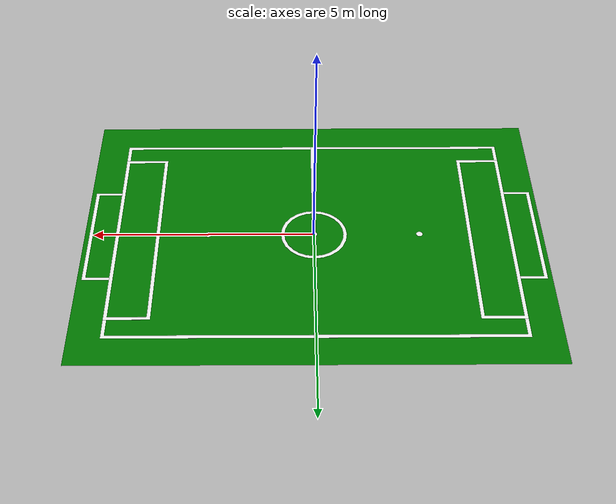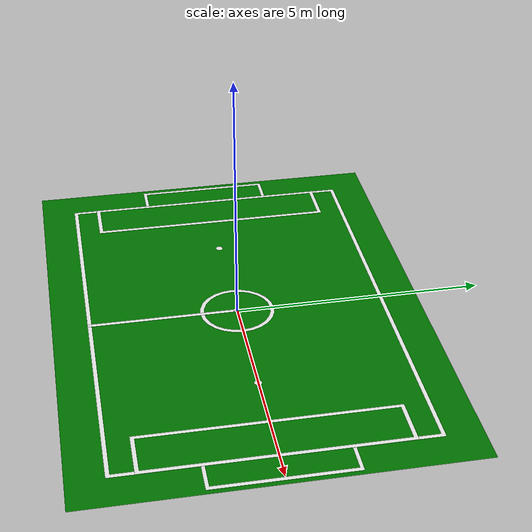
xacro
<?xml version="1.0"?>

<robot name="field" xmlns:xacro="http://www.ros.org/wiki/xacro">
  <xacro:property name="scale" value="1"/>

  <material name="green">
    <color rgba="0 0.5 0 1"/>
  </material>

  <material name="white">
    <color rgba="1 1 1 1"/>
  </material>

  <material name="red">
    <color rgba="1 0 0 1"/>
  </material>

  <material name="blue">
    <color rgba="0 0 1 1"/>
  </material>

  <link name="world"></link>

  <link name="base">
    <visual>
      <geometry>
        <box size="${scale * 10.4} ${scale * 7.4} 0"/>
      </geometry>
      <origin xyz="0 0 0 "/>
      <material name="green"/>
    </visual>
    <collision>
      <geometry>
        <box size="${scale * 10.4} ${scale * 7.4} 0"/>
      </geometry>
      <origin xyz="0 0 ${scale * 0.005}"/>
    </collision>
  </link>
  <joint name="base_with_world" type="fixed">
    <parent link="world"/>
    <child link="base"/>
  </joint>

  <link name="kickoff_line">
    <visual>
      <geometry>
        <cylinder length="${scale * 0.001}" radius ="${scale * 0.75}"/>
      </geometry>
      <origin xyz="0 0 ${scale * 0.005}"/>
      <material name="white"/>
    </visual>
    <collision>
      <geometry>
        <cylinder length="${scale * 0.001}" radius ="${scale * 0.75}"/>
      </geometry>
      <origin xyz="0 0 ${scale * 0.005}"/>
    </collision>
  </link>
  <joint name="base_with_kickoff_line" type="fixed">
    <parent link="base"/>
    <child link="kickoff_line"/>
  </joint>

  <link name="kickoff_spot">
    <visual>
      <geometry>
        <cylinder length="${scale * 0.001}" radius ="${scale * 0.075}"/>
      </geometry>
      <origin xyz="0 0 ${scale * 0.009}"/>
      <material name="white"/>
    </visual>
    <collision>
      <geometry>
        <cylinder length="${scale * 0.001}" radius ="${scale * 0.075}"/>
      </geometry>
      <origin xyz="0 0 ${scale * 0.009}"/>
    </collision>
  </link>
  <joint name="base_with_kickoff_spot" type="fixed">
    <parent link="base"/>
    <child link="kickoff_spot"/>
  </joint>

  <link name="kickoff_area">
    <visual>
      <geometry>
        <cylinder length="${scale * 0.001}" radius ="${scale * 0.67}"/>
      </geometry>
      <origin xyz ="0 0 ${scale * 0.007}"/>
      <material name="green"/>
    </visual>
    <collision>
      <geometry>
        <cylinder length="${scale * 0.001}" radius ="${scale * 0.67}"/>
      </geometry>
      <origin xyz ="0 0 ${scale * 0.007}"/>
    </collision>
  </link>
  <joint name="base_with_kickoff_area" type="fixed">
    <parent link="base"/>
    <child link="kickoff_area"/>
  </joint>

  <link name="middle_line">
    <visual>
      <geometry>
        <box size="${scale * 0.08} ${scale * 6} ${scale * 0.001}"/>
      </geometry>
      <origin xyz="0 0 ${scale * 0.009}"/>
      <material name="white"/>
    </visual>
    <collision>
      <geometry>
        <box size="${scale * 0.08} ${scale * 6} ${scale * 0.001}"/>
      </geometry>
      <origin xyz="0 0 ${scale * 0.009}"/>
    </collision>
  </link>
  <joint name="base_with_middle_line" type="fixed">
    <parent link="base"/>
    <child link="middle_line"/>
    <origin xyz="0 0 0"/>
  </joint>

  <link name="outer_line">
    <visual>
      <geometry>
        <box size="${scale * 9.0} ${scale * 6.0} ${scale * 0.001}"/>
      </geometry>
      <origin xyz="0.0 0.0 ${scale * 0.001}"/>
      <material name="white"/>
    </visual>
    <collision>
      <geometry>
        <box size="${scale * 9.0} ${scale * 6.0} ${scale * 0.001}"/>
      </geometry>
      <origin xyz="0.0 0.0 ${scale * 0.001}"/>
    </collision>
  </link>
  <joint name="base_with_outer_line" type="fixed">
    <parent link="base"/>
    <child link="outer_line"/>
    <origin xyz="0 0 0"/>
  </joint>

  <link name="inner_field">
    <visual>
      <geometry>
        <box size="${scale * 8.84} ${scale * 5.84} ${scale * 0.001}"/>
      </geometry>
      <origin xyz="0 0 ${scale * 0.003}"/>
      <material name="green"/>
    </visual>
    <collision>
     <geometry>
        <box size="${scale * 8.84} ${scale * 5.84} ${scale * 0.001}"/>
      </geometry>
      <origin xyz="0 0 ${scale * 0.003}"/>
    </collision>
  </link>
  <joint name="base_with_inner_field" type="fixed">
    <parent link="base"/>
    <child link="inner_field"/>
    <origin xyz="0 0 0"/>
  </joint>

  <link name="goal_box_1">
    <visual>
      <geometry>
        <box size="${scale * 0.6} ${scale * 2.74} ${scale * 0.001}"/>
      </geometry>
      <origin xyz="${scale * -4.8} 0 ${scale * 0.001}"/>
      <material name="white"/>
    </visual>
    <collision>
      <geometry>
        <box size="${scale * 0.6} ${scale * 2.74} ${scale * 0.001}"/>
      </geometry>
      <origin xyz="${scale * -4.8} 0 ${scale * 0.001}"/>
    </collision>
  </link>
  <joint name="base_with_goal_box_1" type="fixed">
    <parent link="base"/>
    <child link="goal_box_1"/>
    <origin xyz="0 0 0"/>
  </joint>

  <link name="goal_area_1">
    <visual>
      <geometry>
        <box size="${scale * 0.52} ${scale * 2.6} ${scale * 0.001}"/>
      </geometry>
      <origin xyz="${scale * -4.76} 0 ${scale * 0.003}"/>
      <material name="green"/>
    </visual>
    <collision>
      <geometry>
        <box size="${scale * 0.52} ${scale * 2.6} ${scale * 0.001}"/>
      </geometry>
      <origin xyz="${scale * -4.76} 0 ${scale * 0.003}"/>
    </collision>
  </link>
  <joint name="base_with_goal_area_1" type="fixed">
    <parent link="base"/>
    <child link="goal_area_1"/>
    <origin xyz="0 0 0"/>
  </joint>

  <link name="goal_box_2">
    <visual>
      <geometry>
        <box size="${scale * 0.6} ${scale * 2.74} ${scale * 0.001}"/>
      </geometry>
      <origin xyz="${scale * 4.8} 0 ${scale * 0.001}"/>
      <material name="white"/>
    </visual>
    <collision>
      <geometry>
        <box size="${scale * 0.6} ${scale * 2.74} ${scale * 0.001}"/>
      </geometry>
      <origin xyz="${scale * 4.8} 0 ${scale * 0.001}"/>
    </collision>
  </link>
  <joint name="base_with_goal_box_2" type="fixed">
    <parent link="base"/>
    <child link="goal_box_2"/>
    <origin xyz="0 0 0"/>
  </joint>

  <link name="goal_area_2">
    <visual>
      <geometry>
        <box size="${scale * 0.52} ${scale * 2.6} ${scale * 0.001}"/>
      </geometry>
      <origin xyz="${scale * 4.76} 0 ${scale * 0.003}"/>
      <material name="green"/>
    </visual>
    <collision>
      <geometry>
        <box size="${scale * 0.52} ${scale * 2.6} ${scale * 0.001}"/>
      </geometry>
      <origin xyz="${scale * 4.76} 0 ${scale * 0.003}"/>
    </collision>
  </link>
  <joint name="base_with_goal_area_2" type="fixed">
    <parent link="base"/>
    <child link="goal_area_2"/>
    <origin xyz="0 0 0"/>
  </joint>
  <link name="penalty_box_1">
    <visual>
      <geometry>
        <box size="${scale * 1} ${scale * 5} ${scale * 0.001}"/>
      </geometry>
      <origin xyz="${scale * -4} 0 ${scale * 0.005}"/>
      <material name="white"/>
    </visual>
    <collision>
      <geometry>
        <box size="${scale * 1} ${scale * 5} ${scale * 0.001}"/>
      </geometry>
      <origin xyz="${scale * -4} 0 ${scale * 0.005}"/>
    </collision>
  </link>
  <joint name="base_with_penalty_box_1" type="fixed">
    <parent link="base"/>
    <child link="penalty_box_1"/>
    <origin xyz="0 0 0"/>
  </joint>

  <link name="penalty_area_1">
    <visual>
      <geometry>
        <box size="${scale * 0.84} ${scale * 4.84} ${scale * 0.001}"/>
      </geometry>
      <origin xyz="${scale * -4} 0 ${scale * 0.007}"/>
      <material name="green"/>
    </visual>
    <collision>
       <geometry>
        <box size="${scale * 0.84} ${scale * 4.84} ${scale * 0.001}"/>
      </geometry>
      <origin xyz="${scale * -4} 0 ${scale * 0.007}"/>
    </collision>
  </link>
  <joint name="base_with_penalty_area_1" type="fixed">
    <parent link="base"/>
    <child link="penalty_area_1"/>
    <origin xyz="0 0 0"/>
  </joint>

  <link name="penalty_box_2">
    <visual>
      <geometry>
        <box size="${scale * 1} ${scale * 5} ${scale * 0.001}"/>
      </geometry>
      <origin xyz="${scale * 4} 0 ${scale * 0.005}"/>
      <material name="white"/>
    </visual>
    <collision>
       <geometry>
        <box size="${scale * 1} ${scale * 5} ${scale * 0.001}"/>
      </geometry>
      <origin xyz="${scale * 4} 0 ${scale * 0.005}"/>
    </collision>
  </link>
  <joint name="base_with_penalty_box_2" type="fixed">
    <parent link="base"/>
    <child link="penalty_box_2"/>
    <origin xyz="0 0 0"/>
  </joint>

  <link name="penalty_area_2">
    <visual>
      <geometry>
        <box size="${scale * 0.84} ${scale * 4.84} ${scale * 0.001}"/>
      </geometry>
      <origin xyz="${scale * 4} 0 ${scale * 0.007}"/>
      <material name="green"/>
    </visual>
    <collision>
      <geometry>
        <box size="${scale * 0.84} ${scale * 4.84} ${scale * 0.001}"/>
      </geometry>
      <origin xyz="${scale * 4} 0 ${scale * 0.007}"/>
    </collision>
  </link>
  <joint name="base_with_penalty_area_2" type="fixed">
    <parent link="base"/>
    <child link="penalty_area_2"/>
    <origin xyz="0 0 0"/>
  </joint>

  <link name="penalty_mark_1">
    <visual>
      <geometry>
        <cylinder length ="${scale * 0.001}" radius="${scale * 0.075}"/>
      </geometry>
      <origin xyz="${scale  * -2.4} 0 ${scale * 0.005}"/>
      <material name="white"/>
    </visual>
    <collision>
      <geometry>
        <cylinder length ="${scale * 0.001}" radius="${scale * 0.075}"/>
      </geometry>
      <origin xyz="${scale  * -2.4} 0 ${scale * 0.005}"/>
    </collision>
  </link>
  <joint name="base_with_penalty_mark_1" type="fixed">
    <parent link="base"/>
    <child link="penalty_mark_1"/>
    <origin xyz="0 0 0"/>
  </joint>

  <link name="penalty_mark_2">
    <visual>
      <geometry>
        <cylinder length ="${scale * 0.001}" radius="${scale * 0.075}"/>
      </geometry>
      <origin xyz="${scale * 2.4} 0 ${scale * 0.005}"/>
      <material name="white"/>
    </visual>
    <collision>
      <geometry>
        <cylinder length ="${scale * 0.001}" radius="${scale * 0.075}"/>
      </geometry>
      <origin xyz="${scale * 2.4} 0 ${scale * 0.005}"/>
    </collision>
  </link>
  <joint name="base_with_penalty_mark_2" type="fixed">
    <parent link="base"/>
    <child link="penalty_mark_2"/>
    <origin xyz="0 0 0"/>
  </joint>
</robot>
